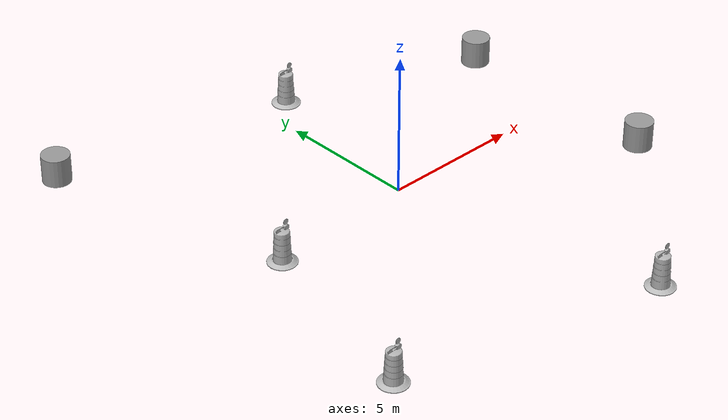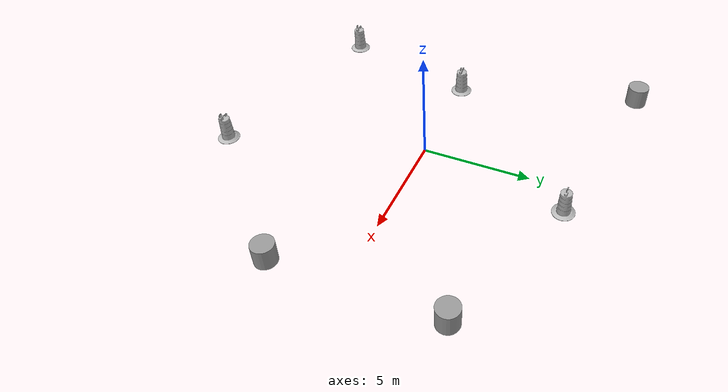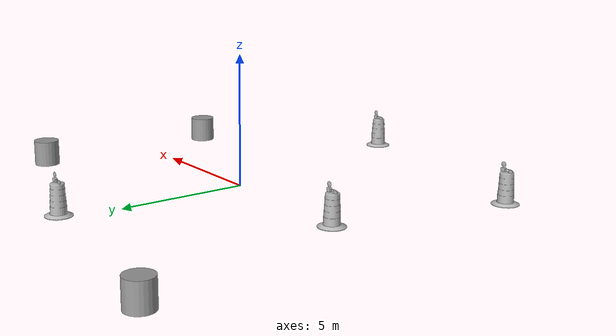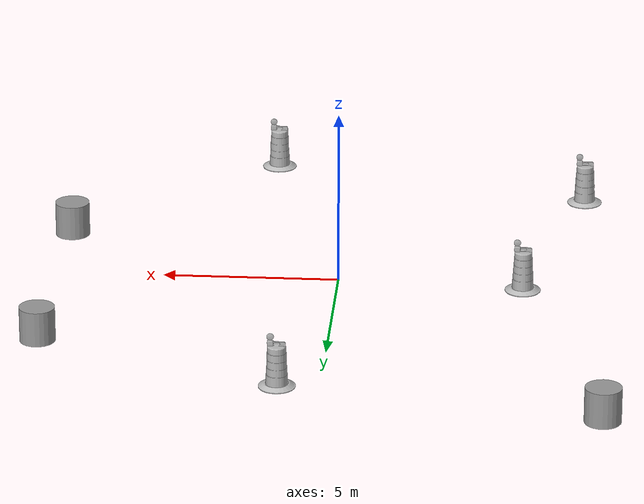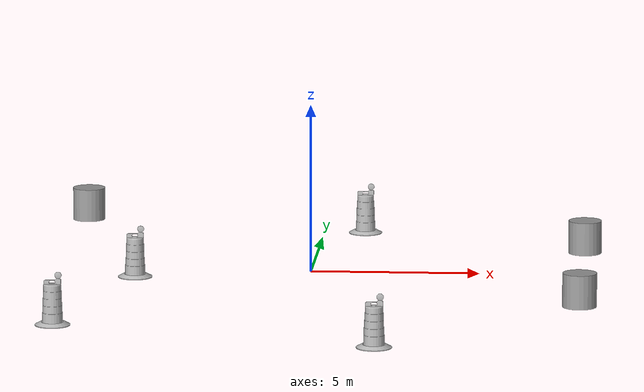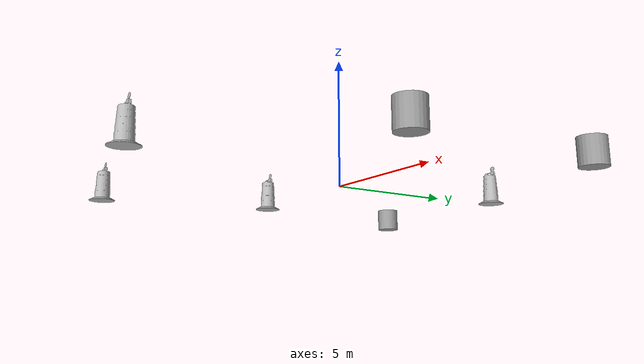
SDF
<?xml version='1.0'?>
<sdf version='1.7'>
  <model name='objects'>
    <link name='link_2'>
      <inertial>
        <mass>1</mass>
        <inertia>
          <ixx>0.145833</ixx>
          <ixy>0</ixy>
          <ixz>0</ixz>
          <iyy>0.145833</iyy>
          <iyz>0</iyz>
          <izz>0.125</izz>
        </inertia>
      </inertial>
      <pose>8.04012 4.27423 0.285714 0 -0 0</pose>
      <visual name='visual'>
        <pose>0 0 0 0 -0 0</pose>
        <geometry>
          <cylinder>
            <radius>0.5</radius>
            <length>1</length>
          </cylinder>
        </geometry>
        <material>
          <lighting>1</lighting>
          <script>
            <uri>file://media/materials/scripts/gazebo.material</uri>
            <name>Gazebo/Grey</name>
          </script>
          <shader type='pixel'/>
        </material>
        <transparency>0</transparency>
        <cast_shadows>1</cast_shadows>
      </visual>
      <collision name='collision'>
        <laser_retro>0</laser_retro>
        <max_contacts>10</max_contacts>
        <pose>0 0 0 0 -0 0</pose>
        <geometry>
          <cylinder>
            <radius>0.5</radius>
            <length>1</length>
          </cylinder>
        </geometry>
        <surface>
          <friction>
            <ode>
              <mu>1</mu>
              <mu2>1</mu2>
              <fdir1>0 0 0</fdir1>
              <slip1>0</slip1>
              <slip2>0</slip2>
            </ode>
            <torsional>
              <coefficient>1</coefficient>
              <patch_radius>0</patch_radius>
              <surface_radius>0</surface_radius>
              <use_patch_radius>1</use_patch_radius>
              <ode>
                <slip>0</slip>
              </ode>
            </torsional>
          </friction>
          <bounce>
            <restitution_coefficient>0</restitution_coefficient>
            <threshold>1e+06</threshold>
          </bounce>
          <contact>
            <collide_without_contact>0</collide_without_contact>
            <collide_without_contact_bitmask>1</collide_without_contact_bitmask>
            <collide_bitmask>1</collide_bitmask>
            <ode>
              <soft_cfm>0</soft_cfm>
              <soft_erp>0.2</soft_erp>
              <kp>1e+13</kp>
              <kd>1</kd>
              <max_vel>0.01</max_vel>
              <min_depth>0</min_depth>
            </ode>
            <bullet>
              <split_impulse>1</split_impulse>
              <split_impulse_penetration_threshold>-0.01</split_impulse_penetration_threshold>
              <soft_cfm>0</soft_cfm>
              <soft_erp>0.2</soft_erp>
              <kp>1e+13</kp>
              <kd>1</kd>
            </bullet>
          </contact>
        </surface>
      </collision>
    </link>
    <link name='link_3'>
      <inertial>
        <mass>1</mass>
        <inertia>
          <ixx>0.145833</ixx>
          <ixy>0</ixy>
          <ixz>0</ixz>
          <iyy>0.145833</iyy>
          <iyz>0</iyz>
          <izz>0.125</izz>
        </inertia>
      </inertial>
      <pose>8.04701 -3.38566 0.285714 0 -0 0</pose>
      <visual name='visual'>
        <pose>0 0 0 0 -0 0</pose>
        <geometry>
          <cylinder>
            <radius>0.5</radius>
            <length>1</length>
          </cylinder>
        </geometry>
        <material>
          <lighting>1</lighting>
          <script>
            <uri>file://media/materials/scripts/gazebo.material</uri>
            <name>Gazebo/Grey</name>
          </script>
          <shader type='pixel'/>
        </material>
        <transparency>0</transparency>
        <cast_shadows>1</cast_shadows>
      </visual>
      <collision name='collision'>
        <laser_retro>0</laser_retro>
        <max_contacts>10</max_contacts>
        <pose>0 0 0 0 -0 0</pose>
        <geometry>
          <cylinder>
            <radius>0.5</radius>
            <length>1</length>
          </cylinder>
        </geometry>
        <surface>
          <friction>
            <ode>
              <mu>1</mu>
              <mu2>1</mu2>
              <fdir1>0 0 0</fdir1>
              <slip1>0</slip1>
              <slip2>0</slip2>
            </ode>
            <torsional>
              <coefficient>1</coefficient>
              <patch_radius>0</patch_radius>
              <surface_radius>0</surface_radius>
              <use_patch_radius>1</use_patch_radius>
              <ode>
                <slip>0</slip>
              </ode>
            </torsional>
          </friction>
          <bounce>
            <restitution_coefficient>0</restitution_coefficient>
            <threshold>1e+06</threshold>
          </bounce>
          <contact>
            <collide_without_contact>0</collide_without_contact>
            <collide_without_contact_bitmask>1</collide_without_contact_bitmask>
            <collide_bitmask>1</collide_bitmask>
            <ode>
              <soft_cfm>0</soft_cfm>
              <soft_erp>0.2</soft_erp>
              <kp>1e+13</kp>
              <kd>1</kd>
              <max_vel>0.01</max_vel>
              <min_depth>0</min_depth>
            </ode>
            <bullet>
              <split_impulse>1</split_impulse>
              <split_impulse_penetration_threshold>-0.01</split_impulse_penetration_threshold>
              <soft_cfm>0</soft_cfm>
              <soft_erp>0.2</soft_erp>
              <kp>1e+13</kp>
              <kd>1</kd>
            </bullet>
          </contact>
        </surface>
      </collision>
    </link>
    <link name='link_5'>
      <inertial>
        <mass>1</mass>
        <inertia>
          <ixx>0.145833</ixx>
          <ixy>0</ixy>
          <ixz>0</ixz>
          <iyy>0.145833</iyy>
          <iyz>0</iyz>
          <izz>0.125</izz>
        </inertia>
      </inertial>
      <pose>-7.57548 8.44593 0.285714 0 -0 0</pose>
      <visual name='visual'>
        <pose>0 0 0 0 -0 0</pose>
        <geometry>
          <cylinder>
            <radius>0.5</radius>
            <length>1</length>
          </cylinder>
        </geometry>
        <material>
          <lighting>1</lighting>
          <script>
            <uri>file://media/materials/scripts/gazebo.material</uri>
            <name>Gazebo/Grey</name>
          </script>
          <shader type='pixel'/>
        </material>
        <transparency>0</transparency>
        <cast_shadows>1</cast_shadows>
      </visual>
      <collision name='collision'>
        <laser_retro>0</laser_retro>
        <max_contacts>10</max_contacts>
        <pose>0 0 0 0 -0 0</pose>
        <geometry>
          <cylinder>
            <radius>0.5</radius>
            <length>1</length>
          </cylinder>
        </geometry>
        <surface>
          <friction>
            <ode>
              <mu>1</mu>
              <mu2>1</mu2>
              <fdir1>0 0 0</fdir1>
              <slip1>0</slip1>
              <slip2>0</slip2>
            </ode>
            <torsional>
              <coefficient>1</coefficient>
              <patch_radius>0</patch_radius>
              <surface_radius>0</surface_radius>
              <use_patch_radius>1</use_patch_radius>
              <ode>
                <slip>0</slip>
              </ode>
            </torsional>
          </friction>
          <bounce>
            <restitution_coefficient>0</restitution_coefficient>
            <threshold>1e+06</threshold>
          </bounce>
          <contact>
            <collide_without_contact>0</collide_without_contact>
            <collide_without_contact_bitmask>1</collide_without_contact_bitmask>
            <collide_bitmask>1</collide_bitmask>
            <ode>
              <soft_cfm>0</soft_cfm>
              <soft_erp>0.2</soft_erp>
              <kp>1e+13</kp>
              <kd>1</kd>
              <max_vel>0.01</max_vel>
              <min_depth>0</min_depth>
            </ode>
            <bullet>
              <split_impulse>1</split_impulse>
              <split_impulse_penetration_threshold>-0.01</split_impulse_penetration_threshold>
              <soft_cfm>0</soft_cfm>
              <soft_erp>0.2</soft_erp>
              <kp>1e+13</kp>
              <kd>1</kd>
            </bullet>
          </contact>
        </surface>
      </collision>
    </link>
    <model name='Construction Barrel'>
      <link name='link'>
        <inertial>
          <pose>0 0 0.4 0 -0 0</pose>
          <mass>500</mass>
          <inertia>
            <ixx>51.2096</ixx>
            <iyy>51.2096</iyy>
            <izz>25</izz>
            <ixy>0</ixy>
            <ixz>0</ixz>
            <iyz>0</iyz>
          </inertia>
        </inertial>
        <collision name='collision'>
          <geometry>
            <mesh>
              <uri>model://construction_barrel/meshes/construction_barrel.dae</uri>
            </mesh>
          </geometry>
        </collision>
        <visual name='visual'>
          <geometry>
            <mesh>
              <uri>model://construction_barrel/meshes/construction_barrel.dae</uri>
            </mesh>
          </geometry>
        </visual>
      </link>
      <pose>1.19834 6.84249 -0.214286 0 -0 0</pose>
    </model>
    <model name='Construction Barrel_0'>
      <link name='link'>
        <inertial>
          <pose>0 0 0.4 0 -0 0</pose>
          <mass>500</mass>
          <inertia>
            <ixx>51.2096</ixx>
            <iyy>51.2096</iyy>
            <izz>25</izz>
            <ixy>0</ixy>
            <ixz>0</ixz>
            <iyz>0</iyz>
          </inertia>
        </inertial>
        <collision name='collision'>
          <geometry>
            <mesh>
              <uri>model://construction_barrel/meshes/construction_barrel.dae</uri>
            </mesh>
          </geometry>
        </collision>
        <visual name='visual'>
          <geometry>
            <mesh>
              <uri>model://construction_barrel/meshes/construction_barrel.dae</uri>
            </mesh>
          </geometry>
        </visual>
      </link>
      <pose>-6.90381 -6.87607 -0.214286 0 -0 0</pose>
    </model>
    <model name='Construction Barrel_1'>
      <link name='link'>
        <inertial>
          <pose>0 0 0.4 0 -0 0</pose>
          <mass>500</mass>
          <inertia>
            <ixx>51.2096</ixx>
            <iyy>51.2096</iyy>
            <izz>25</izz>
            <ixy>0</ixy>
            <ixz>0</ixz>
            <iyz>0</iyz>
          </inertia>
        </inertial>
        <collision name='collision'>
          <geometry>
            <mesh>
              <uri>model://construction_barrel/meshes/construction_barrel.dae</uri>
            </mesh>
          </geometry>
        </collision>
        <visual name='visual'>
          <geometry>
            <mesh>
              <uri>model://construction_barrel/meshes/construction_barrel.dae</uri>
            </mesh>
          </geometry>
        </visual>
      </link>
      <pose>2.42735 -9.15656 -0.214286 0 -0 0</pose>
    </model>
    <model name='Construction Barrel_2'>
      <link name='link'>
        <inertial>
          <pose>0 0 0.4 0 -0 0</pose>
          <mass>500</mass>
          <inertia>
            <ixx>51.2096</ixx>
            <iyy>51.2096</iyy>
            <izz>25</izz>
            <ixy>0</ixy>
            <ixz>0</ixz>
            <iyz>0</iyz>
          </inertia>
        </inertial>
        <collision name='collision'>
          <geometry>
            <mesh>
              <uri>model://construction_barrel/meshes/construction_barrel.dae</uri>
            </mesh>
          </geometry>
        </collision>
        <visual name='visual'>
          <geometry>
            <mesh>
              <uri>model://construction_barrel/meshes/construction_barrel.dae</uri>
            </mesh>
          </geometry>
        </visual>
      </link>
      <pose>-5.23355 -0.144357 -0.214286 0 -0 0</pose>
    </model>
    <static>0</static>
    <allow_auto_disable>1</allow_auto_disable>
  </model>
</sdf>
